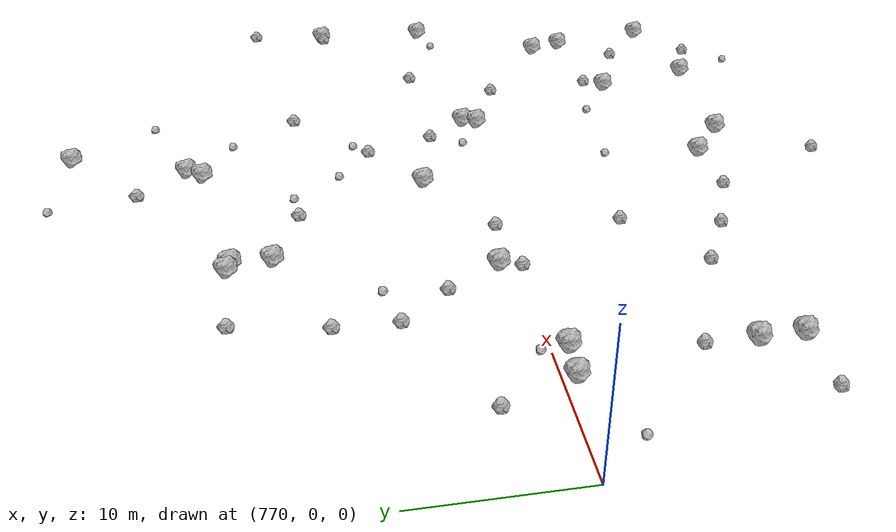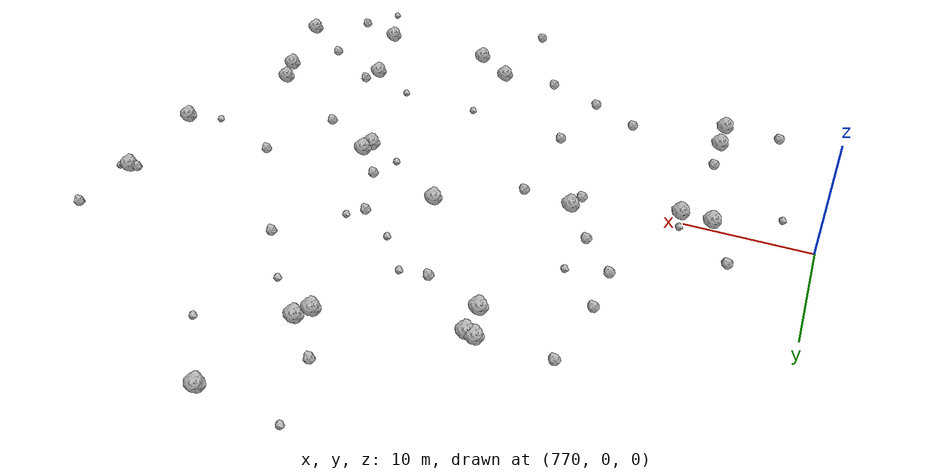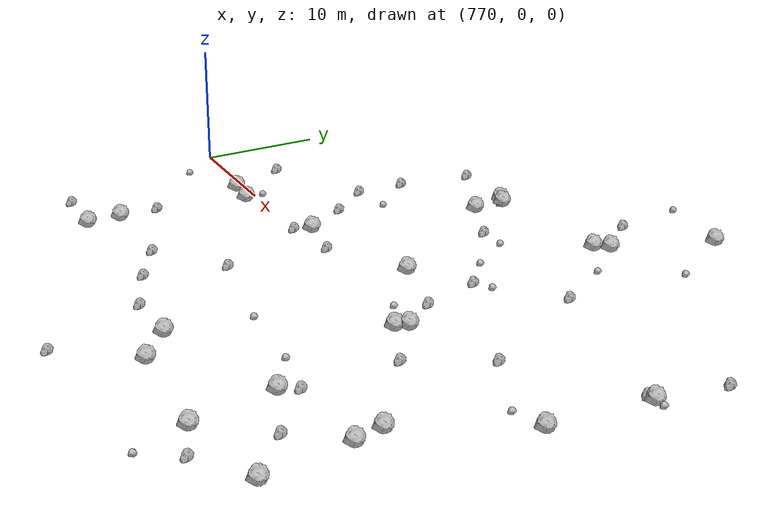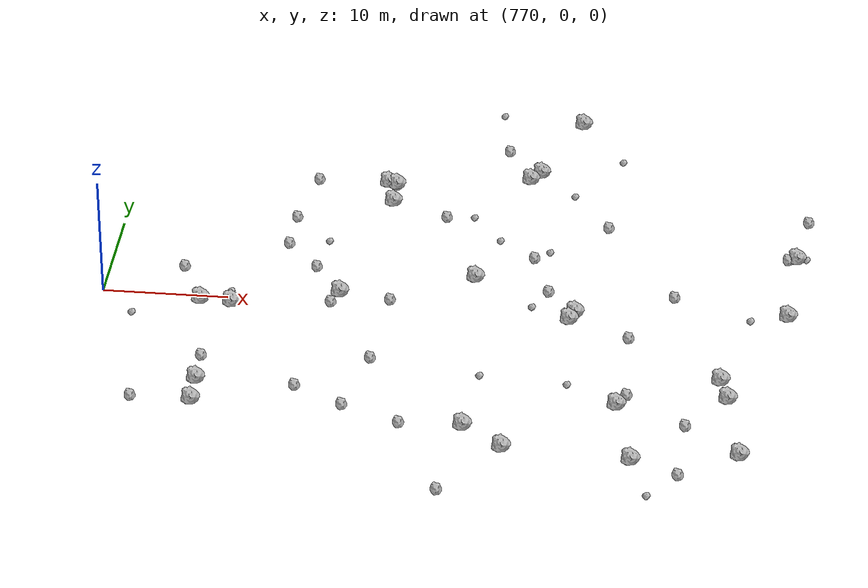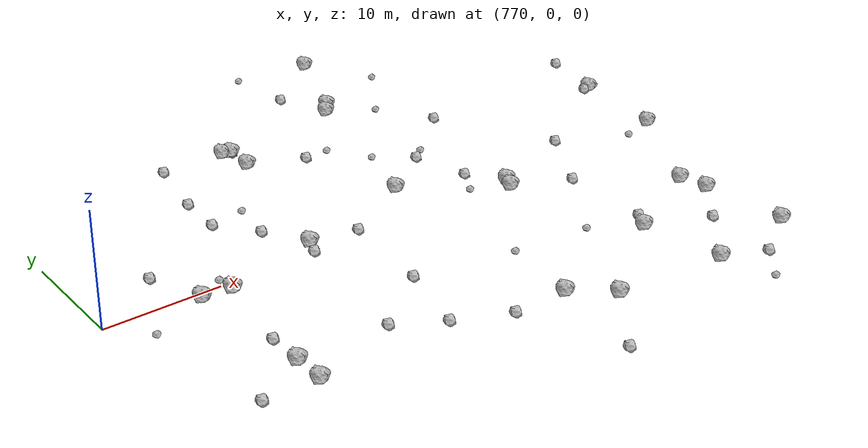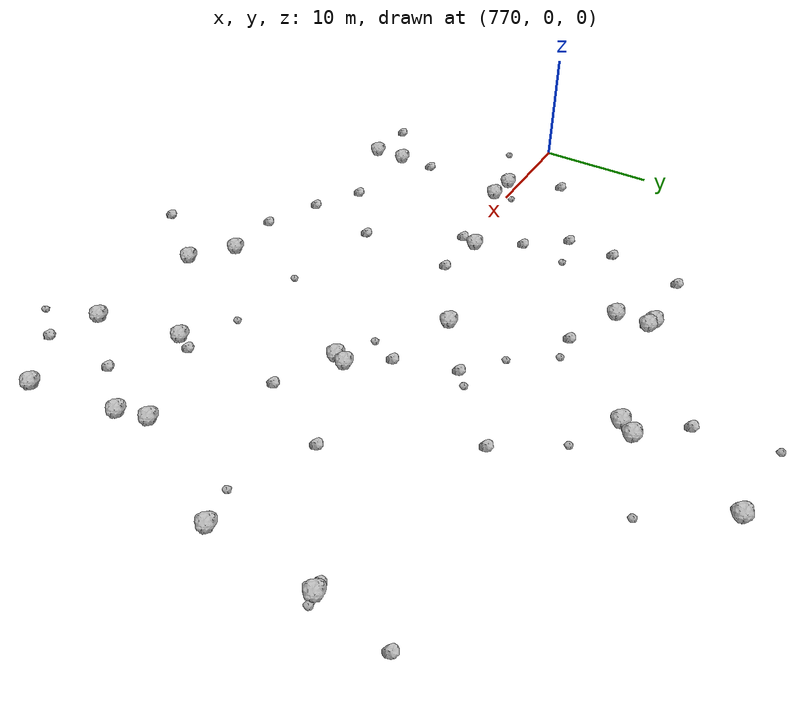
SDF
<sdf version="1.6">
 <world name="default">
  <include><uri>model://sun</uri></include>
  <model name="rock1_20_4">
   <include><uri>model://rock1</uri><pose>799.4235592354647 4.387857976137951 0.5 0 0 0</pose></include>
  </model>
  <model name="rock1_20_5">
   <include><uri>model://rock1</uri><pose>780.4721426880233 -1.0359222364910927 0.5 0 0 0</pose></include>
  </model>
  <model name="rock1_20_6">
   <include><uri>model://rock1</uri><pose>790.8810430089609 18.042185391976936 0.5 0 0 0</pose></include>
  </model>
  <model name="rock1_20_7">
   <include><uri>model://rock1</uri><pose>824.5455465857311 1.077235075518292 0.5 0 0 0</pose></include>
  </model>
  <model name="rock1_20_8">
   <include><uri>model://rock1</uri><pose>803.410505242744 20.734522428088205 0.5 0 0 0</pose></include>
  </model>
  <model name="rock1_20_9">
   <include><uri>model://rock1</uri><pose>791.598259472714 15.153518092136402 0.5 0 0 0</pose></include>
  </model>
  <model name="rock1_20_10">
   <include><uri>model://rock1</uri><pose>802.5960905413339 19.629893621167227 0.5 0 0 0</pose></include>
  </model>
  <model name="rock1_20_11">
   <include><uri>model://rock1</uri><pose>779.3007579879309 -14.73678986860579 0.5 0 0 0</pose></include>
  </model>
  <model name="rock1_20_12">
   <include><uri>model://rock1</uri><pose>777.9483103929733 -0.8226864321752956 0.5 0 0 0</pose></include>
  </model>
  <model name="rock1_20_13">
   <include><uri>model://rock1</uri><pose>807.3512501348284 -0.9416539037829317 0.5 0 0 0</pose></include>
  </model>
  <model name="rock1_20_14">
   <include><uri>model://rock1</uri><pose>791.5951686833885 17.79455205317688 0.5 0 0 0</pose></include>
  </model>
  <model name="rock1_20_15">
   <include><uri>model://rock1</uri><pose>824.9840263908416 9.515713093057947 0.5 0 0 0</pose></include>
  </model>
  <model name="rock1_20_16">
   <include><uri>model://rock1</uri><pose>779.2691790876527 -11.906615400678518 0.5 0 0 0</pose></include>
  </model>
  <model name="rock1_20_17">
   <include><uri>model://rock1</uri><pose>811.8534909527433 -12.339624741027816 0.5 0 0 0</pose></include>
  </model>
  <model name="rock1_20_18">
   <include><uri>model://rock1</uri><pose>788.8633390204603 1.2129999257589255 0.5 0 0 0</pose></include>
  </model>
  <model name="rock1_20_19">
   <include><uri>model://rock1</uri><pose>800.3743917016214 -16.153531521106228 0.5 0 0 0</pose></include>
  </model>
  <model name="rock1_20_20">
   <include><uri>model://rock1</uri><pose>821.518450333506 -18.04710727277217 0.5 0 0 0</pose></include>
  </model>
  <model name="rock1_20_21">
   <include><uri>model://rock1</uri><pose>813.3856414835332 -19.4301410408213 0.5 0 0 0</pose></include>
  </model>
  <model name="rock1_20_22">
   <include><uri>model://rock1</uri><pose>820.3069817067611 -10.726283436929851 0.5 0 0 0</pose></include>
  </model>
  <model name="rock1_20_23">
   <include><uri>model://rock1</uri><pose>807.7354334636867 0.06912593615237839 0.5 0 0 0</pose></include>
  </model>
  <model name="rock1_20_24">
   <include><uri>model://rock1</uri><pose>803.5726705859549 -18.7052944866365 0.5 0 0 0</pose></include>
  </model>
  <model name="rock1_20_25">
   <include><uri>model://rock1</uri><pose>819.6430567377344 -8.289613216096615 0.5 0 0 0</pose></include>
  </model>
  <model name="rock1_20_26">
   <include><uri>model://rock1</uri><pose>806.315724223737 28.905627601945255 0.5 0 0 0</pose></include>
  </model>
  <model name="rock2_20_0">
   <include><uri>model://rock2</uri><pose>817.0079211899331 -20.9634916065556 0.3 0 0 0</pose></include>
  </model>
  <model name="rock2_20_1">
   <include><uri>model://rock2</uri><pose>800.4617457410408 23.999540246210316 0.3 0 0 0</pose></include>
  </model>
  <model name="rock2_20_2">
   <include><uri>model://rock2</uri><pose>774.5717898443313 -14.60023865692159 0.3 0 0 0</pose></include>
  </model>
  <model name="rock2_20_3">
   <include><uri>model://rock2</uri><pose>812.5106311993734 -10.900515195280388 0.3 0 0 0</pose></include>
  </model>
  <model name="rock2_20_4">
   <include><uri>model://rock2</uri><pose>792.9475765472757 0.559723303036904 0.3 0 0 0</pose></include>
  </model>
  <model name="rock2_20_5">
   <include><uri>model://rock2</uri><pose>812.1721132887328 -3.0884824461840275 0.3 0 0 0</pose></include>
  </model>
  <model name="rock2_20_6">
   <include><uri>model://rock2</uri><pose>790.8777095340434 -14.228651147359164 0.3 0 0 0</pose></include>
  </model>
  <model name="rock2_20_7">
   <include><uri>model://rock2</uri><pose>824.2541057301139 9.412057506772193 0.3 0 0 0</pose></include>
  </model>
  <model name="rock2_20_8">
   <include><uri>model://rock2</uri><pose>785.0907133175796 18.06165348884265 0.3 0 0 0</pose></include>
  </model>
  <model name="rock2_20_9">
   <include><uri>model://rock2</uri><pose>795.4841505325388 -16.20965776010641 0.3 0 0 0</pose></include>
  </model>
  <model name="rock2_20_10">
   <include><uri>model://rock2</uri><pose>786.55314185503 4.811779990636197 0.3 0 0 0</pose></include>
  </model>
  <model name="rock2_20_11">
   <include><uri>model://rock2</uri><pose>805.402503200337 2.928151194251768 0.3 0 0 0</pose></include>
  </model>
  <model name="rock2_20_12">
   <include><uri>model://rock2</uri><pose>796.2187976607086 13.215426307514775 0.3 0 0 0</pose></include>
  </model>
  <model name="rock2_20_13">
   <include><uri>model://rock2</uri><pose>809.5304906300728 12.828262610773855 0.3 0 0 0</pose></include>
  </model>
  <model name="rock2_20_14">
   <include><uri>model://rock2</uri><pose>775.9843293621385 3.835850360791774 0.3 0 0 0</pose></include>
  </model>
  <model name="rock2_20_15">
   <include><uri>model://rock2</uri><pose>788.2913070292402 -0.18331914431760055 0.3 0 0 0</pose></include>
  </model>
  <model name="rock2_20_16">
   <include><uri>model://rock2</uri><pose>817.2156347411959 -14.558839780513164 0.3 0 0 0</pose></include>
  </model>
  <model name="rock2_20_17">
   <include><uri>model://rock2</uri><pose>791.5404035179897 17.71316076908238 0.3 0 0 0</pose></include>
  </model>
  <model name="rock2_20_18">
   <include><uri>model://rock2</uri><pose>784.0250466443583 12.068847107067924 0.3 0 0 0</pose></include>
  </model>
  <model name="rock2_20_19">
   <include><uri>model://rock2</uri><pose>783.9057319676932 8.032608383996255 0.3 0 0 0</pose></include>
  </model>
  <model name="rock2_20_20">
   <include><uri>model://rock2</uri><pose>825.7421448419061 15.200934054024167 0.3 0 0 0</pose></include>
  </model>
  <model name="rock2_20_21">
   <include><uri>model://rock2</uri><pose>779.1842022514248 -8.650831525978411 0.3 0 0 0</pose></include>
  </model>
  <model name="rock2_20_22">
   <include><uri>model://rock2</uri><pose>786.9520600787175 -12.020417121323291 0.3 0 0 0</pose></include>
  </model>
  <model name="rock2_20_23">
   <include><uri>model://rock2</uri><pose>792.3256962492981 -7.737457199430111 0.3 0 0 0</pose></include>
  </model>
  <model name="rock2_20_24">
   <include><uri>model://rock2</uri><pose>803.8795162196224 7.730828075858618 0.3 0 0 0</pose></include>
  </model>
  <model name="rock2_20_25">
   <include><uri>model://rock2</uri><pose>799.2377029894203 -24.50159548475983 0.3 0 0 0</pose></include>
  </model>
  <model name="rock2_20_26">
   <include><uri>model://rock2</uri><pose>815.4323326403949 3.036280650948015 0.3 0 0 0</pose></include>
  </model>
  <model name="rock3_20_0">
   <include><uri>model://rock3</uri><pose>805.0552033833895 8.708619167826797 0.2 0 0 0</pose></include>
  </model>
  <model name="rock3_20_1">
   <include><uri>model://rock3</uri><pose>798.4674709098595 13.384877663030608 0.2 0 0 0</pose></include>
  </model>
  <model name="rock3_20_2">
   <include><uri>model://rock3</uri><pose>807.8458826062069 -9.914010575297112 0.2 0 0 0</pose></include>
  </model>
  <model name="rock3_20_3">
   <include><uri>model://rock3</uri><pose>825.7189923797724 9.641825468308113 0.2 0 0 0</pose></include>
  </model>
  <model name="rock3_20_4">
   <include><uri>model://rock3</uri><pose>780.2006079299452 0.605636425794124 0.2 0 0 0</pose></include>
  </model>
  <model name="rock3_20_5">
   <include><uri>model://rock3</uri><pose>810.027530850555 23.182954963262837 0.2 0 0 0</pose></include>
  </model>
  <model name="rock3_20_6">
   <include><uri>model://rock3</uri><pose>806.425453196702 17.420766266701108 0.2 0 0 0</pose></include>
  </model>
  <model name="rock3_20_7">
   <include><uri>model://rock3</uri><pose>814.8250428231199 -23.82498614056412 0.2 0 0 0</pose></include>
  </model>
  <model name="rock3_20_8">
   <include><uri>model://rock3</uri><pose>800.9024317867744 10.079471327609518 0.2 0 0 0</pose></include>
  </model>
  <model name="rock3_20_9">
   <include><uri>model://rock3</uri><pose>801.0171181221499 -9.347902338485714 0.2 0 0 0</pose></include>
  </model>
  <model name="rock3_20_10">
   <include><uri>model://rock3</uri><pose>821.579907636357 0.28403665902778386 0.2 0 0 0</pose></include>
  </model>
  <model name="rock3_20_11">
   <include><uri>model://rock3</uri><pose>799.4959761009293 29.761359217922838 0.2 0 0 0</pose></include>
  </model>
  <model name="rock3_20_12">
   <include><uri>model://rock3</uri><pose>787.0917136110511 8.696624421659536 0.2 0 0 0</pose></include>
  </model>
  <model name="rock3_20_13">
   <include><uri>model://rock3</uri><pose>772.7764059588998 -3.145200175630791 0.2 0 0 0</pose></include>
  </model>
  <model name="rock3_20_14">
   <include><uri>model://rock3</uri><pose>804.2477151860173 0.618129027082464 0.2 0 0 0</pose></include>
  </model>
 </world>
</sdf>
